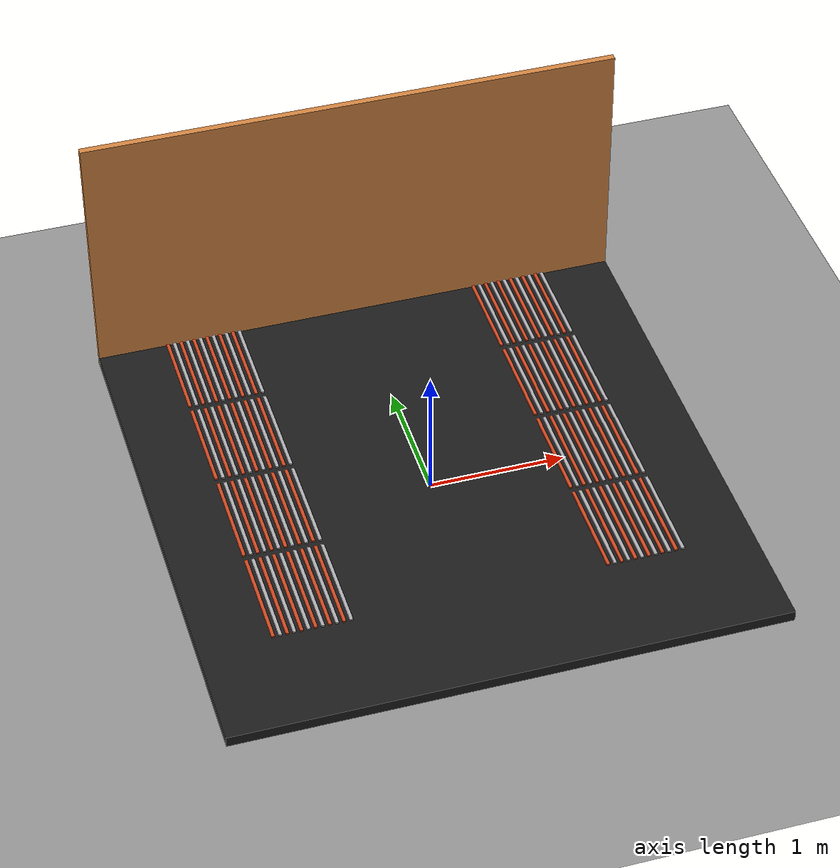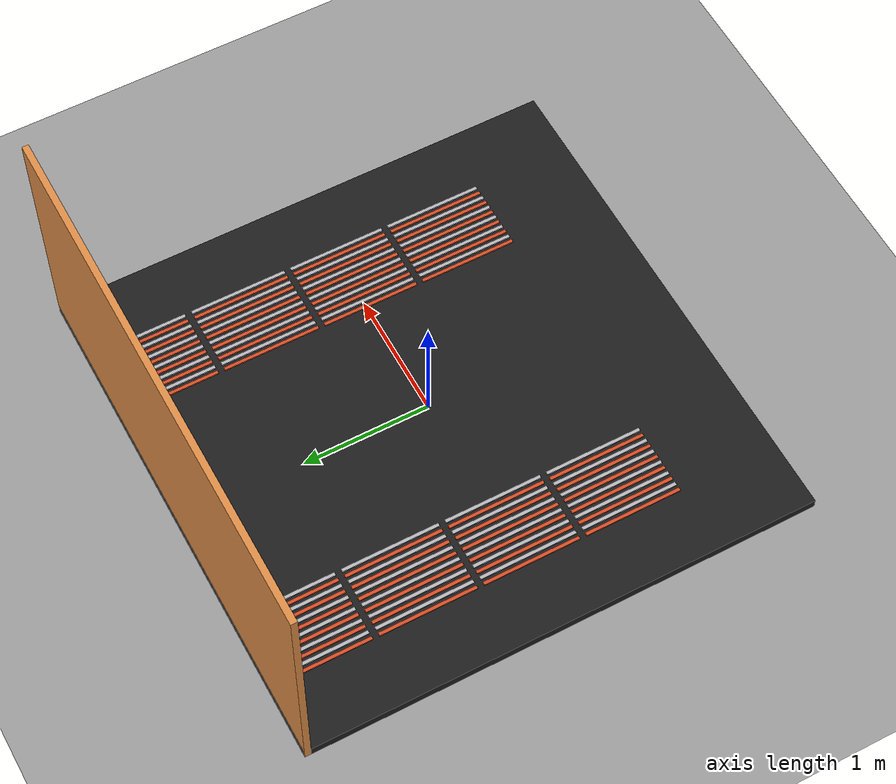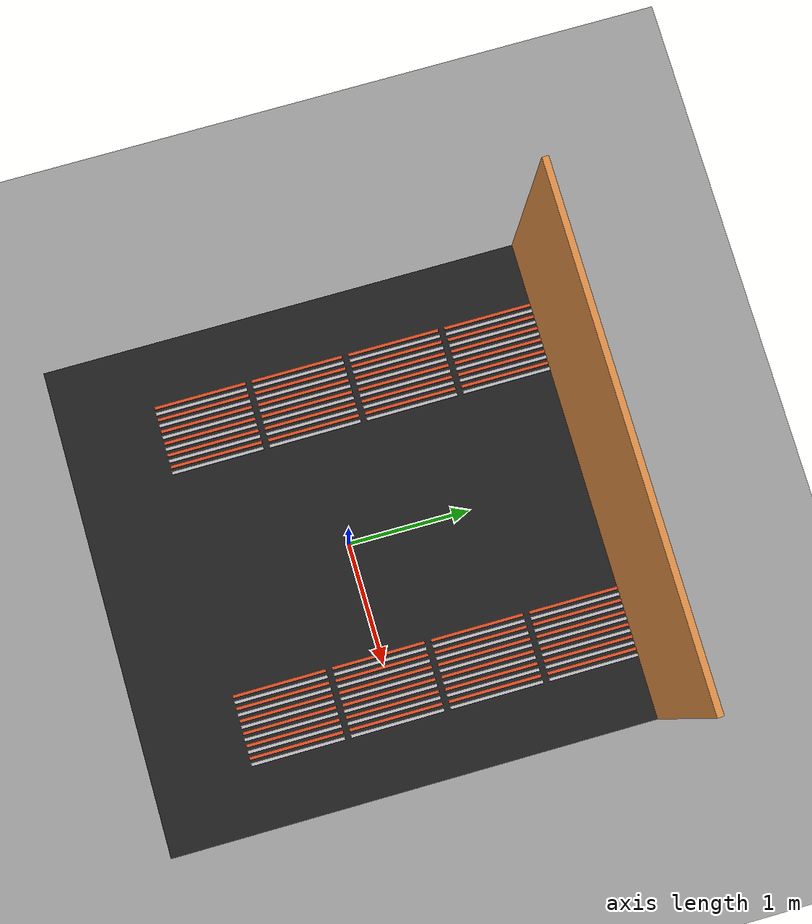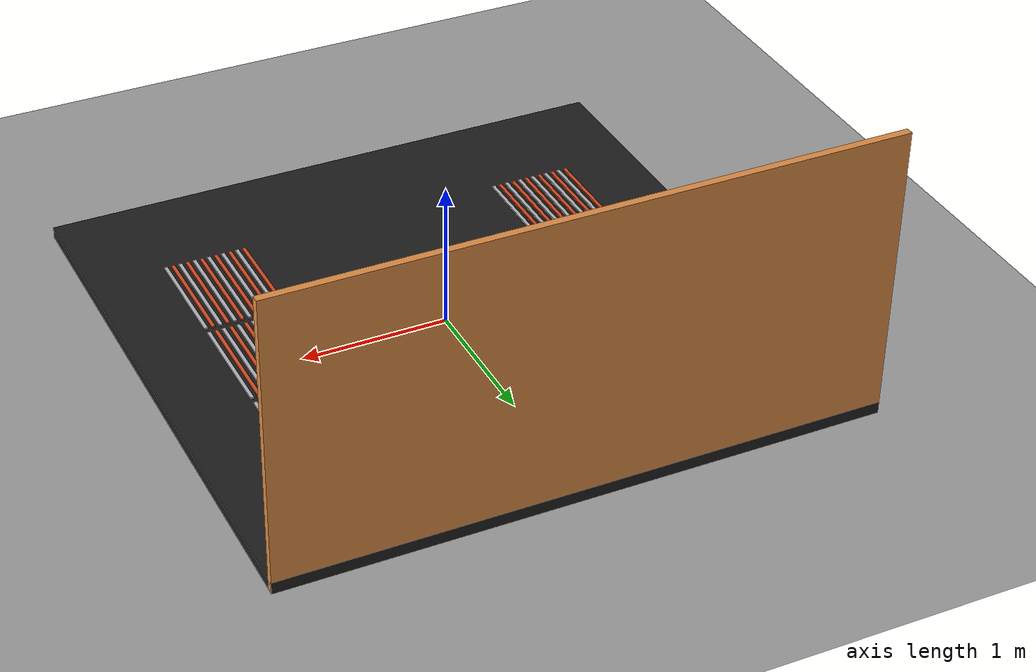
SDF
<?xml version="1.0"?>
<sdf version="1.9">
  <world name="electrolysis_polygon_8_baths">

    <physics name="default_physics" type="ode">
      <max_step_size>0.001</max_step_size>
      <real_time_factor>1.0</real_time_factor>
    </physics>

    <gravity>0 0 -9.81</gravity>

    <scene>
      <ambient>0.55 0.55 0.55 1</ambient>
      <background>0.92 0.92 0.92 1</background>
      <shadows>true</shadows>
    </scene>

    <light name="sun" type="directional">
      <pose>0 0 8 0 0 0</pose>
      <cast_shadows>true</cast_shadows>
      <diffuse>0.95 0.95 0.95 1</diffuse>
      <specular>0.15 0.15 0.15 1</specular>
      <direction>-0.4 0.2 -1.0</direction>
    </light>

    <model name="ground_plane">
      <static>true</static>
      <link name="link">
        <collision name="collision">
          <geometry>
            <plane>
              <normal>0 0 1</normal>
              <size>20 20</size>
            </plane>
          </geometry>
        </collision>
        <visual name="visual">
          <geometry>
            <plane>
              <normal>0 0 1</normal>
              <size>20 20</size>
            </plane>
          </geometry>
          <material>
            <ambient>0.62 0.62 0.62 1</ambient>
            <diffuse>0.62 0.62 0.62 1</diffuse>
          </material>
        </visual>
      </link>
    </model>

    <model name="polygon_platform">
      <static>true</static>
      <pose>0.0000 0.0000 0.0400 0 0 0</pose>
      <link name="link">
        <collision name="collision">
          <geometry>
            <box>
              <size>4.0000 4.0000 0.0800</size>
            </box>
          </geometry>
        </collision>
        <visual name="visual">
          <geometry>
            <box>
              <size>4.0000 4.0000 0.0800</size>
            </box>
          </geometry>
          <material>
            <ambient>0.12 0.12 0.12 1</ambient>
            <diffuse>0.12 0.12 0.12 1</diffuse>
          </material>
        </visual>
      </link>
    </model>

    <model name="bath_1_anode_01">
      <static>true</static>
      <pose>-1.4750 -0.8300 0.0800 0 0 0</pose>
      <link name="link">
        <collision name="collision">
          <geometry>
            <box>
              <size>0.0250 0.7600 0.0250</size>
            </box>
          </geometry>
        </collision>
        <visual name="visual">
          <geometry>
            <box>
              <size>0.0250 0.7600 0.0250</size>
            </box>
          </geometry>
          <material>
            <ambient>0.85 0.30 0.14 1</ambient>
            <diffuse>0.85 0.30 0.14 1</diffuse>
          </material>
        </visual>
      </link>
    </model>

    <model name="bath_1_cathode_02">
      <static>true</static>
      <pose>-1.4250 -0.8300 0.0800 0 0 0</pose>
      <link name="link">
        <collision name="collision">
          <geometry>
            <box>
              <size>0.0250 0.7600 0.0250</size>
            </box>
          </geometry>
        </collision>
        <visual name="visual">
          <geometry>
            <box>
              <size>0.0250 0.7600 0.0250</size>
            </box>
          </geometry>
          <material>
            <ambient>0.72 0.72 0.74 1</ambient>
            <diffuse>0.72 0.72 0.74 1</diffuse>
          </material>
        </visual>
      </link>
    </model>

    <model name="bath_1_anode_03">
      <static>true</static>
      <pose>-1.3750 -0.8300 0.0800 0 0 0</pose>
      <link name="link">
        <collision name="collision">
          <geometry>
            <box>
              <size>0.0250 0.7600 0.0250</size>
            </box>
          </geometry>
        </collision>
        <visual name="visual">
          <geometry>
            <box>
              <size>0.0250 0.7600 0.0250</size>
            </box>
          </geometry>
          <material>
            <ambient>0.85 0.30 0.14 1</ambient>
            <diffuse>0.85 0.30 0.14 1</diffuse>
          </material>
        </visual>
      </link>
    </model>

    <model name="bath_1_cathode_04">
      <static>true</static>
      <pose>-1.3250 -0.8300 0.0800 0 0 0</pose>
      <link name="link">
        <collision name="collision">
          <geometry>
            <box>
              <size>0.0250 0.7600 0.0250</size>
            </box>
          </geometry>
        </collision>
        <visual name="visual">
          <geometry>
            <box>
              <size>0.0250 0.7600 0.0250</size>
            </box>
          </geometry>
          <material>
            <ambient>0.72 0.72 0.74 1</ambient>
            <diffuse>0.72 0.72 0.74 1</diffuse>
          </material>
        </visual>
      </link>
    </model>

    <model name="bath_1_anode_05">
      <static>true</static>
      <pose>-1.2750 -0.8300 0.0800 0 0 0</pose>
      <link name="link">
        <collision name="collision">
          <geometry>
            <box>
              <size>0.0250 0.7600 0.0250</size>
            </box>
          </geometry>
        </collision>
        <visual name="visual">
          <geometry>
            <box>
              <size>0.0250 0.7600 0.0250</size>
            </box>
          </geometry>
          <material>
            <ambient>0.85 0.30 0.14 1</ambient>
            <diffuse>0.85 0.30 0.14 1</diffuse>
          </material>
        </visual>
      </link>
    </model>

    <model name="bath_1_cathode_06">
      <static>true</static>
      <pose>-1.2250 -0.8300 0.0800 0 0 0</pose>
      <link name="link">
        <collision name="collision">
          <geometry>
            <box>
              <size>0.0250 0.7600 0.0250</size>
            </box>
          </geometry>
        </collision>
        <visual name="visual">
          <geometry>
            <box>
              <size>0.0250 0.7600 0.0250</size>
            </box>
          </geometry>
          <material>
            <ambient>0.72 0.72 0.74 1</ambient>
            <diffuse>0.72 0.72 0.74 1</diffuse>
          </material>
        </visual>
      </link>
    </model>

    <model name="bath_1_anode_07">
      <static>true</static>
      <pose>-1.1750 -0.8300 0.0800 0 0 0</pose>
      <link name="link">
        <collision name="collision">
          <geometry>
            <box>
              <size>0.0250 0.7600 0.0250</size>
            </box>
          </geometry>
        </collision>
        <visual name="visual">
          <geometry>
            <box>
              <size>0.0250 0.7600 0.0250</size>
            </box>
          </geometry>
          <material>
            <ambient>0.85 0.30 0.14 1</ambient>
            <diffuse>0.85 0.30 0.14 1</diffuse>
          </material>
        </visual>
      </link>
    </model>

    <model name="bath_1_cathode_08">
      <static>true</static>
      <pose>-1.1250 -0.8300 0.0800 0 0 0</pose>
      <link name="link">
        <collision name="collision">
          <geometry>
            <box>
              <size>0.0250 0.7600 0.0250</size>
            </box>
          </geometry>
        </collision>
        <visual name="visual">
          <geometry>
            <box>
              <size>0.0250 0.7600 0.0250</size>
            </box>
          </geometry>
          <material>
            <ambient>0.72 0.72 0.74 1</ambient>
            <diffuse>0.72 0.72 0.74 1</diffuse>
          </material>
        </visual>
      </link>
    </model>

    <model name="bath_1_anode_09">
      <static>true</static>
      <pose>-1.0750 -0.8300 0.0800 0 0 0</pose>
      <link name="link">
        <collision name="collision">
          <geometry>
            <box>
              <size>0.0250 0.7600 0.0250</size>
            </box>
          </geometry>
        </collision>
        <visual name="visual">
          <geometry>
            <box>
              <size>0.0250 0.7600 0.0250</size>
            </box>
          </geometry>
          <material>
            <ambient>0.85 0.30 0.14 1</ambient>
            <diffuse>0.85 0.30 0.14 1</diffuse>
          </material>
        </visual>
      </link>
    </model>

    <model name="bath_1_cathode_10">
      <static>true</static>
      <pose>-1.0250 -0.8300 0.0800 0 0 0</pose>
      <link name="link">
        <collision name="collision">
          <geometry>
            <box>
              <size>0.0250 0.7600 0.0250</size>
            </box>
          </geometry>
        </collision>
        <visual name="visual">
          <geometry>
            <box>
              <size>0.0250 0.7600 0.0250</size>
            </box>
          </geometry>
          <material>
            <ambient>0.72 0.72 0.74 1</ambient>
            <diffuse>0.72 0.72 0.74 1</diffuse>
          </material>
        </visual>
      </link>
    </model>

    <model name="bath_1_anode_11">
      <static>true</static>
      <pose>-0.9750 -0.8300 0.0800 0 0 0</pose>
      <link name="link">
        <collision name="collision">
          <geometry>
            <box>
              <size>0.0250 0.7600 0.0250</size>
            </box>
          </geometry>
        </collision>
        <visual name="visual">
          <geometry>
            <box>
              <size>0.0250 0.7600 0.0250</size>
            </box>
          </geometry>
          <material>
            <ambient>0.85 0.30 0.14 1</ambient>
            <diffuse>0.85 0.30 0.14 1</diffuse>
          </material>
        </visual>
      </link>
    </model>

    <model name="bath_1_cathode_12">
      <static>true</static>
      <pose>-0.9250 -0.8300 0.0800 0 0 0</pose>
      <link name="link">
        <collision name="collision">
          <geometry>
            <box>
              <size>0.0250 0.7600 0.0250</size>
            </box>
          </geometry>
        </collision>
        <visual name="visual">
          <geometry>
            <box>
              <size>0.0250 0.7600 0.0250</size>
            </box>
          </geometry>
          <material>
            <ambient>0.72 0.72 0.74 1</ambient>
            <diffuse>0.72 0.72 0.74 1</diffuse>
          </material>
        </visual>
      </link>
    </model>

    <model name="bath_2_anode_01">
      <static>true</static>
      <pose>-1.4750 -0.0200 0.0800 0 0 0</pose>
      <link name="link">
        <collision name="collision">
          <geometry>
            <box>
              <size>0.0250 0.7600 0.0250</size>
            </box>
          </geometry>
        </collision>
        <visual name="visual">
          <geometry>
            <box>
              <size>0.0250 0.7600 0.0250</size>
            </box>
          </geometry>
          <material>
            <ambient>0.85 0.30 0.14 1</ambient>
            <diffuse>0.85 0.30 0.14 1</diffuse>
          </material>
        </visual>
      </link>
    </model>

    <model name="bath_2_cathode_02">
      <static>true</static>
      <pose>-1.4250 -0.0200 0.0800 0 0 0</pose>
      <link name="link">
        <collision name="collision">
          <geometry>
            <box>
              <size>0.0250 0.7600 0.0250</size>
            </box>
          </geometry>
        </collision>
        <visual name="visual">
          <geometry>
            <box>
              <size>0.0250 0.7600 0.0250</size>
            </box>
          </geometry>
          <material>
            <ambient>0.72 0.72 0.74 1</ambient>
            <diffuse>0.72 0.72 0.74 1</diffuse>
          </material>
        </visual>
      </link>
    </model>

    <model name="bath_2_anode_03">
      <static>true</static>
      <pose>-1.3750 -0.0200 0.0800 0 0 0</pose>
      <link name="link">
        <collision name="collision">
          <geometry>
            <box>
              <size>0.0250 0.7600 0.0250</size>
            </box>
          </geometry>
        </collision>
        <visual name="visual">
          <geometry>
            <box>
              <size>0.0250 0.7600 0.0250</size>
            </box>
          </geometry>
          <material>
            <ambient>0.85 0.30 0.14 1</ambient>
            <diffuse>0.85 0.30 0.14 1</diffuse>
          </material>
        </visual>
      </link>
    </model>

    <model name="bath_2_cathode_04">
      <static>true</static>
      <pose>-1.3250 -0.0200 0.0800 0 0 0</pose>
      <link name="link">
        <collision name="collision">
          <geometry>
            <box>
              <size>0.0250 0.7600 0.0250</size>
            </box>
          </geometry>
        </collision>
        <visual name="visual">
          <geometry>
            <box>
              <size>0.0250 0.7600 0.0250</size>
            </box>
          </geometry>
          <material>
            <ambient>0.72 0.72 0.74 1</ambient>
            <diffuse>0.72 0.72 0.74 1</diffuse>
          </material>
        </visual>
      </link>
    </model>

    <model name="bath_2_anode_05">
      <static>true</static>
      <pose>-1.2750 -0.0200 0.0800 0 0 0</pose>
      <link name="link">
        <collision name="collision">
          <geometry>
            <box>
              <size>0.0250 0.7600 0.0250</size>
            </box>
          </geometry>
        </collision>
        <visual name="visual">
          <geometry>
            <box>
              <size>0.0250 0.7600 0.0250</size>
            </box>
          </geometry>
          <material>
            <ambient>0.85 0.30 0.14 1</ambient>
            <diffuse>0.85 0.30 0.14 1</diffuse>
          </material>
        </visual>
      </link>
    </model>

    <model name="bath_2_cathode_06">
      <static>true</static>
      <pose>-1.2250 -0.0200 0.0800 0 0 0</pose>
      <link name="link">
        <collision name="collision">
          <geometry>
            <box>
              <size>0.0250 0.7600 0.0250</size>
            </box>
          </geometry>
        </collision>
        <visual name="visual">
          <geometry>
            <box>
              <size>0.0250 0.7600 0.0250</size>
            </box>
          </geometry>
          <material>
            <ambient>0.72 0.72 0.74 1</ambient>
            <diffuse>0.72 0.72 0.74 1</diffuse>
          </material>
        </visual>
      </link>
    </model>

    <model name="bath_2_anode_07">
      <static>true</static>
      <pose>-1.1750 -0.0200 0.0800 0 0 0</pose>
      <link name="link">
        <collision name="collision">
          <geometry>
            <box>
              <size>0.0250 0.7600 0.0250</size>
            </box>
          </geometry>
        </collision>
        <visual name="visual">
          <geometry>
            <box>
              <size>0.0250 0.7600 0.0250</size>
            </box>
          </geometry>
          <material>
            <ambient>0.85 0.30 0.14 1</ambient>
            <diffuse>0.85 0.30 0.14 1</diffuse>
          </material>
        </visual>
      </link>
    </model>

    <model name="bath_2_cathode_08">
      <static>true</static>
      <pose>-1.1250 -0.0200 0.0800 0 0 0</pose>
      <link name="link">
        <collision name="collision">
          <geometry>
            <box>
              <size>0.0250 0.7600 0.0250</size>
            </box>
          </geometry>
        </collision>
        <visual name="visual">
          <geometry>
            <box>
              <size>0.0250 0.7600 0.0250</size>
            </box>
          </geometry>
          <material>
            <ambient>0.72 0.72 0.74 1</ambient>
            <diffuse>0.72 0.72 0.74 1</diffuse>
          </material>
        </visual>
      </link>
    </model>

    <model name="bath_2_anode_09">
      <static>true</static>
      <pose>-1.0750 -0.0200 0.0800 0 0 0</pose>
      <link name="link">
        <collision name="collision">
          <geometry>
            <box>
              <size>0.0250 0.7600 0.0250</size>
            </box>
          </geometry>
        </collision>
        <visual name="visual">
          <geometry>
            <box>
              <size>0.0250 0.7600 0.0250</size>
            </box>
          </geometry>
          <material>
            <ambient>0.85 0.30 0.14 1</ambient>
            <diffuse>0.85 0.30 0.14 1</diffuse>
          </material>
        </visual>
      </link>
    </model>

    <model name="bath_2_cathode_10">
      <static>true</static>
      <pose>-1.0250 -0.0200 0.0800 0 0 0</pose>
      <link name="link">
        <collision name="collision">
          <geometry>
            <box>
              <size>0.0250 0.7600 0.0250</size>
            </box>
          </geometry>
        </collision>
        <visual name="visual">
          <geometry>
            <box>
              <size>0.0250 0.7600 0.0250</size>
            </box>
          </geometry>
          <material>
            <ambient>0.72 0.72 0.74 1</ambient>
            <diffuse>0.72 0.72 0.74 1</diffuse>
          </material>
        </visual>
      </link>
    </model>

    <model name="bath_2_anode_11">
      <static>true</static>
      <pose>-0.9750 -0.0200 0.0800 0 0 0</pose>
      <link name="link">
        <collision name="collision">
          <geometry>
            <box>
              <size>0.0250 0.7600 0.0250</size>
            </box>
          </geometry>
        </collision>
        <visual name="visual">
          <geometry>
            <box>
              <size>0.0250 0.7600 0.0250</size>
            </box>
          </geometry>
          <material>
            <ambient>0.85 0.30 0.14 1</ambient>
            <diffuse>0.85 0.30 0.14 1</diffuse>
          </material>
        </visual>
      </link>
    </model>

    <model name="bath_2_cathode_12">
      <static>true</static>
      <pose>-0.9250 -0.0200 0.0800 0 0 0</pose>
      <link name="link">
        <collision name="collision">
          <geometry>
            <box>
              <size>0.0250 0.7600 0.0250</size>
            </box>
          </geometry>
        </collision>
        <visual name="visual">
          <geometry>
            <box>
              <size>0.0250 0.7600 0.0250</size>
            </box>
          </geometry>
          <material>
            <ambient>0.72 0.72 0.74 1</ambient>
            <diffuse>0.72 0.72 0.74 1</diffuse>
          </material>
        </visual>
      </link>
    </model>

    <model name="bath_3_anode_01">
      <static>true</static>
      <pose>-1.4750 0.7900 0.0800 0 0 0</pose>
      <link name="link">
        <collision name="collision">
          <geometry>
            <box>
              <size>0.0250 0.7600 0.0250</size>
            </box>
          </geometry>
        </collision>
        <visual name="visual">
          <geometry>
            <box>
              <size>0.0250 0.7600 0.0250</size>
            </box>
          </geometry>
          <material>
            <ambient>0.85 0.30 0.14 1</ambient>
            <diffuse>0.85 0.30 0.14 1</diffuse>
          </material>
        </visual>
      </link>
    </model>

    <model name="bath_3_cathode_02">
      <static>true</static>
      <pose>-1.4250 0.7900 0.0800 0 0 0</pose>
      <link name="link">
        <collision name="collision">
          <geometry>
            <box>
              <size>0.0250 0.7600 0.0250</size>
            </box>
          </geometry>
        </collision>
        <visual name="visual">
          <geometry>
            <box>
              <size>0.0250 0.7600 0.0250</size>
            </box>
          </geometry>
          <material>
            <ambient>0.72 0.72 0.74 1</ambient>
            <diffuse>0.72 0.72 0.74 1</diffuse>
          </material>
        </visual>
      </link>
    </model>

    <model name="bath_3_anode_03">
      <static>true</static>
      <pose>-1.3750 0.7900 0.0800 0 0 0</pose>
      <link name="link">
        <collision name="collision">
          <geometry>
            <box>
              <size>0.0250 0.7600 0.0250</size>
            </box>
          </geometry>
        </collision>
        <visual name="visual">
          <geometry>
            <box>
              <size>0.0250 0.7600 0.0250</size>
            </box>
          </geometry>
          <material>
            <ambient>0.85 0.30 0.14 1</ambient>
            <diffuse>0.85 0.30 0.14 1</diffuse>
          </material>
        </visual>
      </link>
    </model>

    <model name="bath_3_cathode_04">
      <static>true</static>
      <pose>-1.3250 0.7900 0.0800 0 0 0</pose>
      <link name="link">
        <collision name="collision">
          <geometry>
            <box>
              <size>0.0250 0.7600 0.0250</size>
            </box>
          </geometry>
        </collision>
        <visual name="visual">
          <geometry>
            <box>
              <size>0.0250 0.7600 0.0250</size>
            </box>
          </geometry>
          <material>
            <ambient>0.72 0.72 0.74 1</ambient>
            <diffuse>0.72 0.72 0.74 1</diffuse>
          </material>
        </visual>
      </link>
    </model>

    <model name="bath_3_anode_05">
      <static>true</static>
      <pose>-1.2750 0.7900 0.0800 0 0 0</pose>
      <link name="link">
        <collision name="collision">
          <geometry>
            <box>
              <size>0.0250 0.7600 0.0250</size>
            </box>
          </geometry>
        </collision>
        <visual name="visual">
          <geometry>
            <box>
              <size>0.0250 0.7600 0.0250</size>
            </box>
          </geometry>
          <material>
            <ambient>0.85 0.30 0.14 1</ambient>
            <diffuse>0.85 0.30 0.14 1</diffuse>
          </material>
        </visual>
      </link>
    </model>

    <model name="bath_3_cathode_06">
      <static>true</static>
      <pose>-1.2250 0.7900 0.0800 0 0 0</pose>
      <link name="link">
        <collision name="collision">
          <geometry>
            <box>
              <size>0.0250 0.7600 0.0250</size>
            </box>
          </geometry>
        </collision>
        <visual name="visual">
          <geometry>
            <box>
              <size>0.0250 0.7600 0.0250</size>
            </box>
          </geometry>
          <material>
            <ambient>0.72 0.72 0.74 1</ambient>
            <diffuse>0.72 0.72 0.74 1</diffuse>
          </material>
        </visual>
      </link>
    </model>

    <model name="bath_3_anode_07">
      <static>true</static>
      <pose>-1.1750 0.7900 0.0800 0 0 0</pose>
      <link name="link">
        <collision name="collision">
          <geometry>
            <box>
              <size>0.0250 0.7600 0.0250</size>
            </box>
          </geometry>
        </collision>
        <visual name="visual">
          <geometry>
            <box>
              <size>0.0250 0.7600 0.0250</size>
            </box>
          </geometry>
          <material>
            <ambient>0.85 0.30 0.14 1</ambient>
            <diffuse>0.85 0.30 0.14 1</diffuse>
          </material>
        </visual>
      </link>
    </model>

    <model name="bath_3_cathode_08">
      <static>true</static>
      <pose>-1.1250 0.7900 0.0800 0 0 0</pose>
      <link name="link">
        <collision name="collision">
          <geometry>
            <box>
              <size>0.0250 0.7600 0.0250</size>
            </box>
          </geometry>
        </collision>
        <visual name="visual">
          <geometry>
            <box>
              <size>0.0250 0.7600 0.0250</size>
            </box>
          </geometry>
          <material>
            <ambient>0.72 0.72 0.74 1</ambient>
            <diffuse>0.72 0.72 0.74 1</diffuse>
          </material>
        </visual>
      </link>
    </model>

    <model name="bath_3_anode_09">
      <static>true</static>
      <pose>-1.0750 0.7900 0.0800 0 0 0</pose>
      <link name="link">
        <collision name="collision">
          <geometry>
            <box>
              <size>0.0250 0.7600 0.0250</size>
            </box>
          </geometry>
        </collision>
        <visual name="visual">
          <geometry>
            <box>
              <size>0.0250 0.7600 0.0250</size>
            </box>
          </geometry>
          <material>
            <ambient>0.85 0.30 0.14 1</ambient>
            <diffuse>0.85 0.30 0.14 1</diffuse>
          </material>
        </visual>
      </link>
    </model>

    <model name="bath_3_cathode_10">
      <static>true</static>
      <pose>-1.0250 0.7900 0.0800 0 0 0</pose>
      <link name="link">
        <collision name="collision">
          <geometry>
            <box>
              <size>0.0250 0.7600 0.0250</size>
            </box>
          </geometry>
        </collision>
        <visual name="visual">
          <geometry>
            <box>
              <size>0.0250 0.7600 0.0250</size>
            </box>
          </geometry>
          <material>
            <ambient>0.72 0.72 0.74 1</ambient>
            <diffuse>0.72 0.72 0.74 1</diffuse>
          </material>
        </visual>
      </link>
    </model>

    <model name="bath_3_anode_11">
      <static>true</static>
      <pose>-0.9750 0.7900 0.0800 0 0 0</pose>
      <link name="link">
        <collision name="collision">
          <geometry>
            <box>
              <size>0.0250 0.7600 0.0250</size>
            </box>
          </geometry>
        </collision>
        <visual name="visual">
          <geometry>
            <box>
              <size>0.0250 0.7600 0.0250</size>
            </box>
          </geometry>
          <material>
            <ambient>0.85 0.30 0.14 1</ambient>
            <diffuse>0.85 0.30 0.14 1</diffuse>
          </material>
        </visual>
      </link>
    </model>

    <model name="bath_3_cathode_12">
      <static>true</static>
      <pose>-0.9250 0.7900 0.0800 0 0 0</pose>
      <link name="link">
        <collision name="collision">
          <geometry>
            <box>
              <size>0.0250 0.7600 0.0250</size>
            </box>
          </geometry>
        </collision>
        <visual name="visual">
          <geometry>
            <box>
              <size>0.0250 0.7600 0.0250</size>
            </box>
          </geometry>
          <material>
            <ambient>0.72 0.72 0.74 1</ambient>
            <diffuse>0.72 0.72 0.74 1</diffuse>
          </material>
        </visual>
      </link>
    </model>

    <model name="bath_4_anode_01">
      <static>true</static>
      <pose>-1.4750 1.6000 0.0800 0 0 0</pose>
      <link name="link">
        <collision name="collision">
          <geometry>
            <box>
              <size>0.0250 0.7600 0.0250</size>
            </box>
          </geometry>
        </collision>
        <visual name="visual">
          <geometry>
            <box>
              <size>0.0250 0.7600 0.0250</size>
            </box>
          </geometry>
          <material>
            <ambient>0.85 0.30 0.14 1</ambient>
            <diffuse>0.85 0.30 0.14 1</diffuse>
          </material>
        </visual>
      </link>
    </model>

    <model name="bath_4_cathode_02">
      <static>true</static>
      <pose>-1.4250 1.6000 0.0800 0 0 0</pose>
      <link name="link">
        <collision name="collision">
          <geometry>
            <box>
              <size>0.0250 0.7600 0.0250</size>
            </box>
          </geometry>
        </collision>
        <visual name="visual">
          <geometry>
            <box>
              <size>0.0250 0.7600 0.0250</size>
            </box>
          </geometry>
          <material>
            <ambient>0.72 0.72 0.74 1</ambient>
            <diffuse>0.72 0.72 0.74 1</diffuse>
          </material>
        </visual>
      </link>
    </model>

    <model name="bath_4_anode_03">
      <static>true</static>
      <pose>-1.3750 1.6000 0.0800 0 0 0</pose>
      <link name="link">
        <collision name="collision">
          <geometry>
            <box>
              <size>0.0250 0.7600 0.0250</size>
            </box>
          </geometry>
        </collision>
        <visual name="visual">
          <geometry>
            <box>
              <size>0.0250 0.7600 0.0250</size>
            </box>
          </geometry>
          <material>
            <ambient>0.85 0.30 0.14 1</ambient>
            <diffuse>0.85 0.30 0.14 1</diffuse>
          </material>
        </visual>
      </link>
    </model>

    <model name="bath_4_cathode_04">
      <static>true</static>
      <pose>-1.3250 1.6000 0.0800 0 0 0</pose>
      <link name="link">
        <collision name="collision">
          <geometry>
            <box>
              <size>0.0250 0.7600 0.0250</size>
            </box>
          </geometry>
        </collision>
        <visual name="visual">
          <geometry>
            <box>
              <size>0.0250 0.7600 0.0250</size>
            </box>
          </geometry>
          <material>
            <ambient>0.72 0.72 0.74 1</ambient>
            <diffuse>0.72 0.72 0.74 1</diffuse>
          </material>
        </visual>
      </link>
    </model>

    <model name="bath_4_anode_05">
      <static>true</static>
      <pose>-1.2750 1.6000 0.0800 0 0 0</pose>
      <link name="link">
        <collision name="collision">
          <geometry>
            <box>
              <size>0.0250 0.7600 0.0250</size>
            </box>
          </geometry>
        </collision>
        <visual name="visual">
          <geometry>
            <box>
              <size>0.0250 0.7600 0.0250</size>
            </box>
          </geometry>
          <material>
            <ambient>0.85 0.30 0.14 1</ambient>
            <diffuse>0.85 0.30 0.14 1</diffuse>
          </material>
        </visual>
      </link>
    </model>

    <model name="bath_4_cathode_06">
      <static>true</static>
      <pose>-1.2250 1.6000 0.0800 0 0 0</pose>
      <link name="link">
        <collision name="collision">
          <geometry>
            <box>
              <size>0.0250 0.7600 0.0250</size>
            </box>
          </geometry>
        </collision>
        <visual name="visual">
          <geometry>
            <box>
              <size>0.0250 0.7600 0.0250</size>
            </box>
          </geometry>
          <material>
            <ambient>0.72 0.72 0.74 1</ambient>
            <diffuse>0.72 0.72 0.74 1</diffuse>
          </material>
        </visual>
      </link>
    </model>

    <model name="bath_4_anode_07">
      <static>true</static>
      <pose>-1.1750 1.6000 0.0800 0 0 0</pose>
      <link name="link">
        <collision name="collision">
          <geometry>
            <box>
              <size>0.0250 0.7600 0.0250</size>
            </box>
          </geometry>
        </collision>
        <visual name="visual">
          <geometry>
            <box>
              <size>0.0250 0.7600 0.0250</size>
            </box>
          </geometry>
          <material>
            <ambient>0.85 0.30 0.14 1</ambient>
            <diffuse>0.85 0.30 0.14 1</diffuse>
          </material>
        </visual>
      </link>
    </model>

    <model name="bath_4_cathode_08">
      <static>true</static>
      <pose>-1.1250 1.6000 0.0800 0 0 0</pose>
      <link name="link">
        <collision name="collision">
          <geometry>
            <box>
              <size>0.0250 0.7600 0.0250</size>
            </box>
          </geometry>
        </collision>
        <visual name="visual">
          <geometry>
            <box>
              <size>0.0250 0.7600 0.0250</size>
            </box>
          </geometry>
          <material>
            <ambient>0.72 0.72 0.74 1</ambient>
            <diffuse>0.72 0.72 0.74 1</diffuse>
          </material>
        </visual>
      </link>
    </model>

    <model name="bath_4_anode_09">
      <static>true</static>
      <pose>-1.0750 1.6000 0.0800 0 0 0</pose>
      <link name="link">
        <collision name="collision">
          <geometry>
            <box>
              <size>0.0250 0.7600 0.0250</size>
            </box>
          </geometry>
        </collision>
        <visual name="visual">
          <geometry>
            <box>
              <size>0.0250 0.7600 0.0250</size>
            </box>
          </geometry>
          <material>
            <ambient>0.85 0.30 0.14 1</ambient>
            <diffuse>0.85 0.30 0.14 1</diffuse>
          </material>
        </visual>
      </link>
    </model>

    <model name="bath_4_cathode_10">
      <static>true</static>
      <pose>-1.0250 1.6000 0.0800 0 0 0</pose>
      <link name="link">
        <collision name="collision">
          <geometry>
            <box>
              <size>0.0250 0.7600 0.0250</size>
            </box>
          </geometry>
        </collision>
        <visual name="visual">
          <geometry>
            <box>
              <size>0.0250 0.7600 0.0250</size>
            </box>
          </geometry>
          <material>
            <ambient>0.72 0.72 0.74 1</ambient>
            <diffuse>0.72 0.72 0.74 1</diffuse>
          </material>
        </visual>
      </link>
    </model>

    <model name="bath_4_anode_11">
      <static>true</static>
      <pose>-0.9750 1.6000 0.0800 0 0 0</pose>
      <link name="link">
        <collision name="collision">
          <geometry>
            <box>
              <size>0.0250 0.7600 0.0250</size>
            </box>
          </geometry>
        </collision>
        <visual name="visual">
          <geometry>
            <box>
              <size>0.0250 0.7600 0.0250</size>
            </box>
          </geometry>
          <material>
            <ambient>0.85 0.30 0.14 1</ambient>
            <diffuse>0.85 0.30 0.14 1</diffuse>
          </material>
        </visual>
      </link>
    </model>

    <model name="bath_4_cathode_12">
      <static>true</static>
      <pose>-0.9250 1.6000 0.0800 0 0 0</pose>
      <link name="link">
        <collision name="collision">
          <geometry>
            <box>
              <size>0.0250 0.7600 0.0250</size>
            </box>
          </geometry>
        </collision>
        <visual name="visual">
          <geometry>
            <box>
              <size>0.0250 0.7600 0.0250</size>
            </box>
          </geometry>
          <material>
            <ambient>0.72 0.72 0.74 1</ambient>
            <diffuse>0.72 0.72 0.74 1</diffuse>
          </material>
        </visual>
      </link>
    </model>

    <model name="bath_5_anode_01">
      <static>true</static>
      <pose>0.9250 -0.8300 0.0800 0 0 0</pose>
      <link name="link">
        <collision name="collision">
          <geometry>
            <box>
              <size>0.0250 0.7600 0.0250</size>
            </box>
          </geometry>
        </collision>
        <visual name="visual">
          <geometry>
            <box>
              <size>0.0250 0.7600 0.0250</size>
            </box>
          </geometry>
          <material>
            <ambient>0.85 0.30 0.14 1</ambient>
            <diffuse>0.85 0.30 0.14 1</diffuse>
          </material>
        </visual>
      </link>
    </model>

    <model name="bath_5_cathode_02">
      <static>true</static>
      <pose>0.9750 -0.8300 0.0800 0 0 0</pose>
      <link name="link">
        <collision name="collision">
          <geometry>
            <box>
              <size>0.0250 0.7600 0.0250</size>
            </box>
          </geometry>
        </collision>
        <visual name="visual">
          <geometry>
            <box>
              <size>0.0250 0.7600 0.0250</size>
            </box>
          </geometry>
          <material>
            <ambient>0.72 0.72 0.74 1</ambient>
            <diffuse>0.72 0.72 0.74 1</diffuse>
          </material>
        </visual>
      </link>
    </model>

    <model name="bath_5_anode_03">
      <static>true</static>
      <pose>1.0250 -0.8300 0.0800 0 0 0</pose>
      <link name="link">
        <collision name="collision">
          <geometry>
            <box>
              <size>0.0250 0.7600 0.0250</size>
            </box>
          </geometry>
        </collision>
        <visual name="visual">
          <geometry>
            <box>
              <size>0.0250 0.7600 0.0250</size>
            </box>
          </geometry>
          <material>
            <ambient>0.85 0.30 0.14 1</ambient>
            <diffuse>0.85 0.30 0.14 1</diffuse>
          </material>
        </visual>
      </link>
    </model>

    <model name="bath_5_cathode_04">
      <static>true</static>
      <pose>1.0750 -0.8300 0.0800 0 0 0</pose>
      <link name="link">
        <collision name="collision">
          <geometry>
            <box>
              <size>0.0250 0.7600 0.0250</size>
            </box>
          </geometry>
        </collision>
        <visual name="visual">
          <geometry>
            <box>
              <size>0.0250 0.7600 0.0250</size>
            </box>
          </geometry>
          <material>
            <ambient>0.72 0.72 0.74 1</ambient>
            <diffuse>0.72 0.72 0.74 1</diffuse>
          </material>
        </visual>
      </link>
    </model>

    <model name="bath_5_anode_05">
      <static>true</static>
      <pose>1.1250 -0.8300 0.0800 0 0 0</pose>
      <link name="link">
        <collision name="collision">
          <geometry>
            <box>
              <size>0.0250 0.7600 0.0250</size>
            </box>
          </geometry>
        </collision>
        <visual name="visual">
          <geometry>
            <box>
              <size>0.0250 0.7600 0.0250</size>
            </box>
          </geometry>
          <material>
            <ambient>0.85 0.30 0.14 1</ambient>
            <diffuse>0.85 0.30 0.14 1</diffuse>
          </material>
        </visual>
      </link>
    </model>

    <model name="bath_5_cathode_06">
      <static>true</static>
      <pose>1.1750 -0.8300 0.0800 0 0 0</pose>
      <link name="link">
        <collision name="collision">
          <geometry>
            <box>
              <size>0.0250 0.7600 0.0250</size>
            </box>
          </geometry>
        </collision>
        <visual name="visual">
          <geometry>
            <box>
              <size>0.0250 0.7600 0.0250</size>
            </box>
          </geometry>
          <material>
            <ambient>0.72 0.72 0.74 1</ambient>
            <diffuse>0.72 0.72 0.74 1</diffuse>
          </material>
        </visual>
      </link>
    </model>

    <model name="bath_5_anode_07">
      <static>true</static>
      <pose>1.2250 -0.8300 0.0800 0 0 0</pose>
      <link name="link">
        <collision name="collision">
          <geometry>
            <box>
              <size>0.0250 0.7600 0.0250</size>
            </box>
          </geometry>
        </collision>
        <visual name="visual">
          <geometry>
            <box>
              <size>0.0250 0.7600 0.0250</size>
            </box>
          </geometry>
          <material>
            <ambient>0.85 0.30 0.14 1</ambient>
            <diffuse>0.85 0.30 0.14 1</diffuse>
          </material>
        </visual>
      </link>
    </model>

    <model name="bath_5_cathode_08">
      <static>true</static>
      <pose>1.2750 -0.8300 0.0800 0 0 0</pose>
      <link name="link">
        <collision name="collision">
          <geometry>
            <box>
              <size>0.0250 0.7600 0.0250</size>
            </box>
          </geometry>
        </collision>
        <visual name="visual">
          <geometry>
            <box>
              <size>0.0250 0.7600 0.0250</size>
            </box>
          </geometry>
          <material>
            <ambient>0.72 0.72 0.74 1</ambient>
            <diffuse>0.72 0.72 0.74 1</diffuse>
          </material>
        </visual>
      </link>
    </model>

    <model name="bath_5_anode_09">
      <static>true</static>
      <pose>1.3250 -0.8300 0.0800 0 0 0</pose>
      <link name="link">
        <collision name="collision">
          <geometry>
            <box>
              <size>0.0250 0.7600 0.0250</size>
            </box>
          </geometry>
        </collision>
        <visual name="visual">
          <geometry>
            <box>
              <size>0.0250 0.7600 0.0250</size>
            </box>
          </geometry>
          <material>
            <ambient>0.85 0.30 0.14 1</ambient>
            <diffuse>0.85 0.30 0.14 1</diffuse>
          </material>
        </visual>
      </link>
    </model>

    <model name="bath_5_cathode_10">
      <static>true</static>
      <pose>1.3750 -0.8300 0.0800 0 0 0</pose>
      <link name="link">
        <collision name="collision">
          <geometry>
            <box>
              <size>0.0250 0.7600 0.0250</size>
            </box>
          </geometry>
        </collision>
        <visual name="visual">
          <geometry>
            <box>
              <size>0.0250 0.7600 0.0250</size>
            </box>
          </geometry>
          <material>
            <ambient>0.72 0.72 0.74 1</ambient>
            <diffuse>0.72 0.72 0.74 1</diffuse>
          </material>
        </visual>
      </link>
    </model>

    <model name="bath_5_anode_11">
      <static>true</static>
      <pose>1.4250 -0.8300 0.0800 0 0 0</pose>
      <link name="link">
        <collision name="collision">
          <geometry>
            <box>
              <size>0.0250 0.7600 0.0250</size>
            </box>
          </geometry>
        </collision>
        <visual name="visual">
          <geometry>
            <box>
              <size>0.0250 0.7600 0.0250</size>
            </box>
          </geometry>
          <material>
            <ambient>0.85 0.30 0.14 1</ambient>
            <diffuse>0.85 0.30 0.14 1</diffuse>
          </material>
        </visual>
      </link>
    </model>

    <model name="bath_5_cathode_12">
      <static>true</static>
      <pose>1.4750 -0.8300 0.0800 0 0 0</pose>
      <link name="link">
        <collision name="collision">
          <geometry>
            <box>
              <size>0.0250 0.7600 0.0250</size>
            </box>
          </geometry>
        </collision>
        <visual name="visual">
          <geometry>
            <box>
              <size>0.0250 0.7600 0.0250</size>
            </box>
          </geometry>
          <material>
            <ambient>0.72 0.72 0.74 1</ambient>
            <diffuse>0.72 0.72 0.74 1</diffuse>
          </material>
        </visual>
      </link>
    </model>

    <model name="bath_6_anode_01">
      <static>true</static>
      <pose>0.9250 -0.0200 0.0800 0 0 0</pose>
      <link name="link">
        <collision name="collision">
          <geometry>
            <box>
              <size>0.0250 0.7600 0.0250</size>
            </box>
          </geometry>
        </collision>
        <visual name="visual">
          <geometry>
            <box>
              <size>0.0250 0.7600 0.0250</size>
            </box>
          </geometry>
          <material>
            <ambient>0.85 0.30 0.14 1</ambient>
            <diffuse>0.85 0.30 0.14 1</diffuse>
          </material>
        </visual>
      </link>
    </model>

    <model name="bath_6_cathode_02">
      <static>true</static>
      <pose>0.9750 -0.0200 0.0800 0 0 0</pose>
      <link name="link">
        <collision name="collision">
          <geometry>
            <box>
              <size>0.0250 0.7600 0.0250</size>
            </box>
          </geometry>
        </collision>
        <visual name="visual">
          <geometry>
            <box>
              <size>0.0250 0.7600 0.0250</size>
            </box>
          </geometry>
          <material>
            <ambient>0.72 0.72 0.74 1</ambient>
            <diffuse>0.72 0.72 0.74 1</diffuse>
          </material>
        </visual>
      </link>
    </model>

    <model name="bath_6_anode_03">
      <static>true</static>
      <pose>1.0250 -0.0200 0.0800 0 0 0</pose>
      <link name="link">
        <collision name="collision">
          <geometry>
            <box>
              <size>0.0250 0.7600 0.0250</size>
            </box>
          </geometry>
        </collision>
        <visual name="visual">
          <geometry>
            <box>
              <size>0.0250 0.7600 0.0250</size>
            </box>
          </geometry>
          <material>
            <ambient>0.85 0.30 0.14 1</ambient>
            <diffuse>0.85 0.30 0.14 1</diffuse>
          </material>
        </visual>
      </link>
    </model>

    <model name="bath_6_cathode_04">
      <static>true</static>
      <pose>1.0750 -0.0200 0.0800 0 0 0</pose>
      <link name="link">
        <collision name="collision">
          <geometry>
            <box>
              <size>0.0250 0.7600 0.0250</size>
            </box>
          </geometry>
        </collision>
        <visual name="visual">
          <geometry>
            <box>
              <size>0.0250 0.7600 0.0250</size>
            </box>
          </geometry>
          <material>
            <ambient>0.72 0.72 0.74 1</ambient>
            <diffuse>0.72 0.72 0.74 1</diffuse>
          </material>
        </visual>
      </link>
    </model>

    <model name="bath_6_anode_05">
      <static>true</static>
      <pose>1.1250 -0.0200 0.0800 0 0 0</pose>
      <link name="link">
        <collision name="collision">
          <geometry>
            <box>
              <size>0.0250 0.7600 0.0250</size>
            </box>
          </geometry>
        </collision>
        <visual name="visual">
          <geometry>
            <box>
              <size>0.0250 0.7600 0.0250</size>
            </box>
          </geometry>
          <material>
            <ambient>0.85 0.30 0.14 1</ambient>
            <diffuse>0.85 0.30 0.14 1</diffuse>
          </material>
        </visual>
      </link>
    </model>

    <model name="bath_6_cathode_06">
      <static>true</static>
      <pose>1.1750 -0.0200 0.0800 0 0 0</pose>
      <link name="link">
        <collision name="collision">
          <geometry>
            <box>
              <size>0.0250 0.7600 0.0250</size>
            </box>
          </geometry>
        </collision>
        <visual name="visual">
          <geometry>
            <box>
              <size>0.0250 0.7600 0.0250</size>
            </box>
          </geometry>
          <material>
            <ambient>0.72 0.72 0.74 1</ambient>
            <diffuse>0.72 0.72 0.74 1</diffuse>
          </material>
        </visual>
      </link>
    </model>

    <model name="bath_6_anode_07">
      <static>true</static>
      <pose>1.2250 -0.0200 0.0800 0 0 0</pose>
      <link name="link">
        <collision name="collision">
          <geometry>
            <box>
              <size>0.0250 0.7600 0.0250</size>
            </box>
          </geometry>
        </collision>
        <visual name="visual">
          <geometry>
            <box>
              <size>0.0250 0.7600 0.0250</size>
            </box>
          </geometry>
          <material>
            <ambient>0.85 0.30 0.14 1</ambient>
            <diffuse>0.85 0.30 0.14 1</diffuse>
          </material>
        </visual>
      </link>
    </model>

    <model name="bath_6_cathode_08">
      <static>true</static>
      <pose>1.2750 -0.0200 0.0800 0 0 0</pose>
      <link name="link">
        <collision name="collision">
          <geometry>
            <box>
              <size>0.0250 0.7600 0.0250</size>
            </box>
          </geometry>
        </collision>
        <visual name="visual">
          <geometry>
            <box>
              <size>0.0250 0.7600 0.0250</size>
            </box>
          </geometry>
          <material>
            <ambient>0.72 0.72 0.74 1</ambient>
            <diffuse>0.72 0.72 0.74 1</diffuse>
          </material>
        </visual>
      </link>
    </model>

    <model name="bath_6_anode_09">
      <static>true</static>
      <pose>1.3250 -0.0200 0.0800 0 0 0</pose>
      <link name="link">
        <collision name="collision">
          <geometry>
            <box>
              <size>0.0250 0.7600 0.0250</size>
            </box>
          </geometry>
        </collision>
        <visual name="visual">
          <geometry>
            <box>
              <size>0.0250 0.7600 0.0250</size>
            </box>
          </geometry>
          <material>
            <ambient>0.85 0.30 0.14 1</ambient>
            <diffuse>0.85 0.30 0.14 1</diffuse>
          </material>
        </visual>
      </link>
    </model>

    <model name="bath_6_cathode_10">
      <static>true</static>
      <pose>1.3750 -0.0200 0.0800 0 0 0</pose>
      <link name="link">
        <collision name="collision">
          <geometry>
            <box>
              <size>0.0250 0.7600 0.0250</size>
            </box>
          </geometry>
        </collision>
        <visual name="visual">
          <geometry>
            <box>
              <size>0.0250 0.7600 0.0250</size>
            </box>
          </geometry>
          <material>
            <ambient>0.72 0.72 0.74 1</ambient>
            <diffuse>0.72 0.72 0.74 1</diffuse>
          </material>
        </visual>
      </link>
    </model>

    <model name="bath_6_anode_11">
      <static>true</static>
      <pose>1.4250 -0.0200 0.0800 0 0 0</pose>
      <link name="link">
        <collision name="collision">
          <geometry>
            <box>
              <size>0.0250 0.7600 0.0250</size>
            </box>
          </geometry>
        </collision>
        <visual name="visual">
          <geometry>
            <box>
              <size>0.0250 0.7600 0.0250</size>
            </box>
          </geometry>
          <material>
            <ambient>0.85 0.30 0.14 1</ambient>
            <diffuse>0.85 0.30 0.14 1</diffuse>
          </material>
        </visual>
      </link>
    </model>

    <model name="bath_6_cathode_12">
      <static>true</static>
      <pose>1.4750 -0.0200 0.0800 0 0 0</pose>
      <link name="link">
        <collision name="collision">
          <geometry>
            <box>
              <size>0.0250 0.7600 0.0250</size>
            </box>
          </geometry>
        </collision>
        <visual name="visual">
          <geometry>
            <box>
              <size>0.0250 0.7600 0.0250</size>
            </box>
          </geometry>
          <material>
            <ambient>0.72 0.72 0.74 1</ambient>
            <diffuse>0.72 0.72 0.74 1</diffuse>
          </material>
        </visual>
      </link>
    </model>

    <model name="bath_7_anode_01">
      <static>true</static>
      <pose>0.9250 0.7900 0.0800 0 0 0</pose>
      <link name="link">
        <collision name="collision">
          <geometry>
            <box>
              <size>0.0250 0.7600 0.0250</size>
            </box>
          </geometry>
        </collision>
        <visual name="visual">
          <geometry>
            <box>
              <size>0.0250 0.7600 0.0250</size>
            </box>
          </geometry>
          <material>
            <ambient>0.85 0.30 0.14 1</ambient>
            <diffuse>0.85 0.30 0.14 1</diffuse>
          </material>
        </visual>
      </link>
    </model>

    <model name="bath_7_cathode_02">
      <static>true</static>
      <pose>0.9750 0.7900 0.0800 0 0 0</pose>
      <link name="link">
        <collision name="collision">
          <geometry>
            <box>
              <size>0.0250 0.7600 0.0250</size>
            </box>
          </geometry>
        </collision>
        <visual name="visual">
          <geometry>
            <box>
              <size>0.0250 0.7600 0.0250</size>
            </box>
          </geometry>
          <material>
            <ambient>0.72 0.72 0.74 1</ambient>
            <diffuse>0.72 0.72 0.74 1</diffuse>
          </material>
        </visual>
      </link>
    </model>

    <model name="bath_7_anode_03">
      <static>true</static>
      <pose>1.0250 0.7900 0.0800 0 0 0</pose>
      <link name="link">
        <collision name="collision">
          <geometry>
            <box>
              <size>0.0250 0.7600 0.0250</size>
            </box>
          </geometry>
        </collision>
        <visual name="visual">
          <geometry>
            <box>
              <size>0.0250 0.7600 0.0250</size>
            </box>
          </geometry>
          <material>
            <ambient>0.85 0.30 0.14 1</ambient>
            <diffuse>0.85 0.30 0.14 1</diffuse>
          </material>
        </visual>
      </link>
    </model>

    <model name="bath_7_cathode_04">
      <static>true</static>
      <pose>1.0750 0.7900 0.0800 0 0 0</pose>
      <link name="link">
        <collision name="collision">
          <geometry>
            <box>
              <size>0.0250 0.7600 0.0250</size>
            </box>
          </geometry>
        </collision>
        <visual name="visual">
          <geometry>
            <box>
              <size>0.0250 0.7600 0.0250</size>
            </box>
          </geometry>
          <material>
            <ambient>0.72 0.72 0.74 1</ambient>
            <diffuse>0.72 0.72 0.74 1</diffuse>
          </material>
        </visual>
      </link>
    </model>

    <model name="bath_7_anode_05">
      <static>true</static>
      <pose>1.1250 0.7900 0.0800 0 0 0</pose>
      <link name="link">
        <collision name="collision">
          <geometry>
            <box>
              <size>0.0250 0.7600 0.0250</size>
            </box>
          </geometry>
        </collision>
        <visual name="visual">
          <geometry>
            <box>
              <size>0.0250 0.7600 0.0250</size>
            </box>
          </geometry>
          <material>
            <ambient>0.85 0.30 0.14 1</ambient>
            <diffuse>0.85 0.30 0.14 1</diffuse>
          </material>
        </visual>
      </link>
    </model>

    <model name="bath_7_cathode_06">
      <static>true</static>
      <pose>1.1750 0.7900 0.0800 0 0 0</pose>
      <link name="link">
        <collision name="collision">
          <geometry>
            <box>
              <size>0.0250 0.7600 0.0250</size>
            </box>
          </geometry>
        </collision>
        <visual name="visual">
          <geometry>
            <box>
              <size>0.0250 0.7600 0.0250</size>
            </box>
          </geometry>
          <material>
            <ambient>0.72 0.72 0.74 1</ambient>
            <diffuse>0.72 0.72 0.74 1</diffuse>
          </material>
        </visual>
      </link>
    </model>

    <model name="bath_7_anode_07">
      <static>true</static>
      <pose>1.2250 0.7900 0.0800 0 0 0</pose>
      <link name="link">
        <collision name="collision">
          <geometry>
            <box>
              <size>0.0250 0.7600 0.0250</size>
            </box>
          </geometry>
        </collision>
        <visual name="visual">
          <geometry>
            <box>
              <size>0.0250 0.7600 0.0250</size>
            </box>
          </geometry>
          <material>
            <ambient>0.85 0.30 0.14 1</ambient>
            <diffuse>0.85 0.30 0.14 1</diffuse>
          </material>
        </visual>
      </link>
    </model>

    <model name="bath_7_cathode_08">
      <static>true</static>
      <pose>1.2750 0.7900 0.0800 0 0 0</pose>
      <link name="link">
        <collision name="collision">
          <geometry>
            <box>
              <size>0.0250 0.7600 0.0250</size>
            </box>
          </geometry>
        </collision>
        <visual name="visual">
          <geometry>
            <box>
              <size>0.0250 0.7600 0.0250</size>
            </box>
          </geometry>
          <material>
            <ambient>0.72 0.72 0.74 1</ambient>
            <diffuse>0.72 0.72 0.74 1</diffuse>
          </material>
        </visual>
      </link>
    </model>

    <model name="bath_7_anode_09">
      <static>true</static>
      <pose>1.3250 0.7900 0.0800 0 0 0</pose>
      <link name="link">
        <collision name="collision">
          <geometry>
            <box>
              <size>0.0250 0.7600 0.0250</size>
            </box>
          </geometry>
        </collision>
        <visual name="visual">
          <geometry>
            <box>
              <size>0.0250 0.7600 0.0250</size>
            </box>
          </geometry>
          <material>
            <ambient>0.85 0.30 0.14 1</ambient>
            <diffuse>0.85 0.30 0.14 1</diffuse>
          </material>
        </visual>
      </link>
    </model>

    <model name="bath_7_cathode_10">
      <static>true</static>
      <pose>1.3750 0.7900 0.0800 0 0 0</pose>
      <link name="link">
        <collision name="collision">
          <geometry>
            <box>
              <size>0.0250 0.7600 0.0250</size>
            </box>
          </geometry>
        </collision>
        <visual name="visual">
          <geometry>
            <box>
              <size>0.0250 0.7600 0.0250</size>
            </box>
          </geometry>
          <material>
            <ambient>0.72 0.72 0.74 1</ambient>
            <diffuse>0.72 0.72 0.74 1</diffuse>
          </material>
        </visual>
      </link>
    </model>

    <model name="bath_7_anode_11">
      <static>true</static>
      <pose>1.4250 0.7900 0.0800 0 0 0</pose>
      <link name="link">
        <collision name="collision">
          <geometry>
            <box>
              <size>0.0250 0.7600 0.0250</size>
            </box>
          </geometry>
        </collision>
        <visual name="visual">
          <geometry>
            <box>
              <size>0.0250 0.7600 0.0250</size>
            </box>
          </geometry>
          <material>
            <ambient>0.85 0.30 0.14 1</ambient>
            <diffuse>0.85 0.30 0.14 1</diffuse>
          </material>
        </visual>
      </link>
    </model>

    <model name="bath_7_cathode_12">
      <static>true</static>
      <pose>1.4750 0.7900 0.0800 0 0 0</pose>
      <link name="link">
        <collision name="collision">
          <geometry>
            <box>
              <size>0.0250 0.7600 0.0250</size>
            </box>
          </geometry>
        </collision>
        <visual name="visual">
          <geometry>
            <box>
              <size>0.0250 0.7600 0.0250</size>
            </box>
          </geometry>
          <material>
            <ambient>0.72 0.72 0.74 1</ambient>
            <diffuse>0.72 0.72 0.74 1</diffuse>
          </material>
        </visual>
      </link>
    </model>

    <model name="bath_8_anode_01">
      <static>true</static>
      <pose>0.9250 1.6000 0.0800 0 0 0</pose>
      <link name="link">
        <collision name="collision">
          <geometry>
            <box>
              <size>0.0250 0.7600 0.0250</size>
            </box>
          </geometry>
        </collision>
        <visual name="visual">
          <geometry>
            <box>
              <size>0.0250 0.7600 0.0250</size>
            </box>
          </geometry>
          <material>
            <ambient>0.85 0.30 0.14 1</ambient>
            <diffuse>0.85 0.30 0.14 1</diffuse>
          </material>
        </visual>
      </link>
    </model>

    <model name="bath_8_cathode_02">
      <static>true</static>
      <pose>0.9750 1.6000 0.0800 0 0 0</pose>
      <link name="link">
        <collision name="collision">
          <geometry>
            <box>
              <size>0.0250 0.7600 0.0250</size>
            </box>
          </geometry>
        </collision>
        <visual name="visual">
          <geometry>
            <box>
              <size>0.0250 0.7600 0.0250</size>
            </box>
          </geometry>
          <material>
            <ambient>0.72 0.72 0.74 1</ambient>
            <diffuse>0.72 0.72 0.74 1</diffuse>
          </material>
        </visual>
      </link>
    </model>

    <model name="bath_8_anode_03">
      <static>true</static>
      <pose>1.0250 1.6000 0.0800 0 0 0</pose>
      <link name="link">
        <collision name="collision">
          <geometry>
            <box>
              <size>0.0250 0.7600 0.0250</size>
            </box>
          </geometry>
        </collision>
        <visual name="visual">
          <geometry>
            <box>
              <size>0.0250 0.7600 0.0250</size>
            </box>
          </geometry>
          <material>
            <ambient>0.85 0.30 0.14 1</ambient>
            <diffuse>0.85 0.30 0.14 1</diffuse>
          </material>
        </visual>
      </link>
    </model>

    <model name="bath_8_cathode_04">
      <static>true</static>
      <pose>1.0750 1.6000 0.0800 0 0 0</pose>
      <link name="link">
        <collision name="collision">
          <geometry>
            <box>
              <size>0.0250 0.7600 0.0250</size>
            </box>
          </geometry>
        </collision>
        <visual name="visual">
          <geometry>
            <box>
              <size>0.0250 0.7600 0.0250</size>
            </box>
          </geometry>
          <material>
            <ambient>0.72 0.72 0.74 1</ambient>
            <diffuse>0.72 0.72 0.74 1</diffuse>
          </material>
        </visual>
      </link>
    </model>

    <model name="bath_8_anode_05">
      <static>true</static>
      <pose>1.1250 1.6000 0.0800 0 0 0</pose>
      <link name="link">
        <collision name="collision">
          <geometry>
            <box>
              <size>0.0250 0.7600 0.0250</size>
            </box>
          </geometry>
        </collision>
        <visual name="visual">
          <geometry>
            <box>
              <size>0.0250 0.7600 0.0250</size>
            </box>
          </geometry>
          <material>
            <ambient>0.85 0.30 0.14 1</ambient>
            <diffuse>0.85 0.30 0.14 1</diffuse>
          </material>
        </visual>
      </link>
    </model>

    <model name="bath_8_cathode_06">
      <static>true</static>
      <pose>1.1750 1.6000 0.0800 0 0 0</pose>
      <link name="link">
        <collision name="collision">
          <geometry>
            <box>
              <size>0.0250 0.7600 0.0250</size>
            </box>
          </geometry>
        </collision>
        <visual name="visual">
          <geometry>
            <box>
              <size>0.0250 0.7600 0.0250</size>
            </box>
          </geometry>
          <material>
            <ambient>0.72 0.72 0.74 1</ambient>
            <diffuse>0.72 0.72 0.74 1</diffuse>
          </material>
        </visual>
      </link>
    </model>

    <model name="bath_8_anode_07">
      <static>true</static>
      <pose>1.2250 1.6000 0.0800 0 0 0</pose>
      <link name="link">
        <collision name="collision">
          <geometry>
            <box>
              <size>0.0250 0.7600 0.0250</size>
            </box>
          </geometry>
        </collision>
        <visual name="visual">
          <geometry>
            <box>
              <size>0.0250 0.7600 0.0250</size>
            </box>
          </geometry>
          <material>
            <ambient>0.85 0.30 0.14 1</ambient>
            <diffuse>0.85 0.30 0.14 1</diffuse>
          </material>
        </visual>
      </link>
    </model>

    <model name="bath_8_cathode_08">
      <static>true</static>
      <pose>1.2750 1.6000 0.0800 0 0 0</pose>
      <link name="link">
        <collision name="collision">
          <geometry>
            <box>
              <size>0.0250 0.7600 0.0250</size>
            </box>
          </geometry>
        </collision>
        <visual name="visual">
          <geometry>
            <box>
              <size>0.0250 0.7600 0.0250</size>
            </box>
          </geometry>
          <material>
            <ambient>0.72 0.72 0.74 1</ambient>
            <diffuse>0.72 0.72 0.74 1</diffuse>
          </material>
        </visual>
      </link>
    </model>

    <model name="bath_8_anode_09">
      <static>true</static>
      <pose>1.3250 1.6000 0.0800 0 0 0</pose>
      <link name="link">
        <collision name="collision">
          <geometry>
            <box>
              <size>0.0250 0.7600 0.0250</size>
            </box>
          </geometry>
        </collision>
        <visual name="visual">
          <geometry>
            <box>
              <size>0.0250 0.7600 0.0250</size>
            </box>
          </geometry>
          <material>
            <ambient>0.85 0.30 0.14 1</ambient>
            <diffuse>0.85 0.30 0.14 1</diffuse>
          </material>
        </visual>
      </link>
    </model>

    <model name="bath_8_cathode_10">
      <static>true</static>
      <pose>1.3750 1.6000 0.0800 0 0 0</pose>
      <link name="link">
        <collision name="collision">
          <geometry>
            <box>
              <size>0.0250 0.7600 0.0250</size>
            </box>
          </geometry>
        </collision>
        <visual name="visual">
          <geometry>
            <box>
              <size>0.0250 0.7600 0.0250</size>
            </box>
          </geometry>
          <material>
            <ambient>0.72 0.72 0.74 1</ambient>
            <diffuse>0.72 0.72 0.74 1</diffuse>
          </material>
        </visual>
      </link>
    </model>

    <model name="bath_8_anode_11">
      <static>true</static>
      <pose>1.4250 1.6000 0.0800 0 0 0</pose>
      <link name="link">
        <collision name="collision">
          <geometry>
            <box>
              <size>0.0250 0.7600 0.0250</size>
            </box>
          </geometry>
        </collision>
        <visual name="visual">
          <geometry>
            <box>
              <size>0.0250 0.7600 0.0250</size>
            </box>
          </geometry>
          <material>
            <ambient>0.85 0.30 0.14 1</ambient>
            <diffuse>0.85 0.30 0.14 1</diffuse>
          </material>
        </visual>
      </link>
    </model>

    <model name="bath_8_cathode_12">
      <static>true</static>
      <pose>1.4750 1.6000 0.0800 0 0 0</pose>
      <link name="link">
        <collision name="collision">
          <geometry>
            <box>
              <size>0.0250 0.7600 0.0250</size>
            </box>
          </geometry>
        </collision>
        <visual name="visual">
          <geometry>
            <box>
              <size>0.0250 0.7600 0.0250</size>
            </box>
          </geometry>
          <material>
            <ambient>0.72 0.72 0.74 1</ambient>
            <diffuse>0.72 0.72 0.74 1</diffuse>
          </material>
        </visual>
      </link>
    </model>

    <model name="rear_wall">
      <static>true</static>
      <pose>0.0000 1.9750 1.0000 0 0 0</pose>
      <link name="link">
        <collision name="collision">
          <geometry>
            <box>
              <size>4.0000 0.0500 2.0000</size>
            </box>
          </geometry>
        </collision>
        <visual name="visual">
          <geometry>
            <box>
              <size>4.0000 0.0500 2.0000</size>
            </box>
          </geometry>
          <material>
            <ambient>0.88 0.56 0.28 1</ambient>
            <diffuse>0.88 0.56 0.28 1</diffuse>
          </material>
        </visual>
      </link>
    </model>

    <gui fullscreen="false">
      <camera name="overview_camera">
        <pose>5.5 -5.5 5.2 0 0.62 2.35</pose>
      </camera>
    </gui>

  </world>
</sdf>
